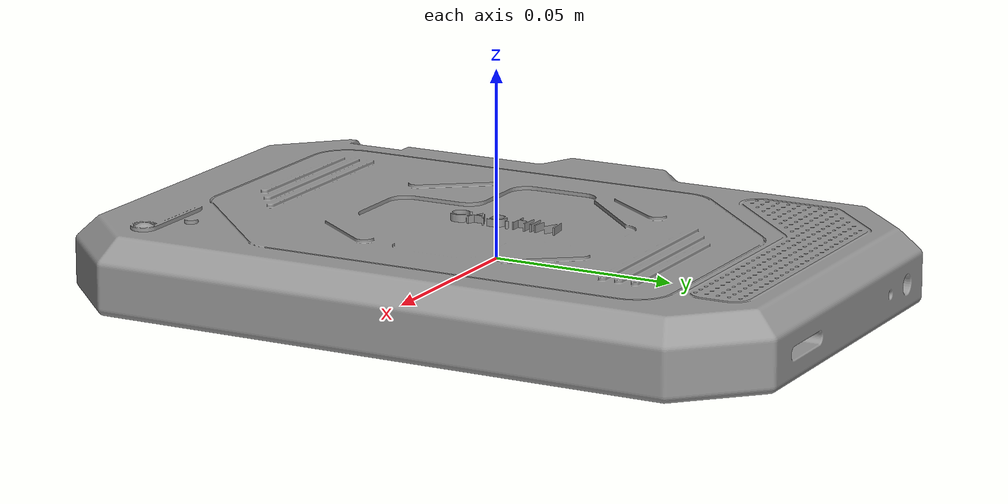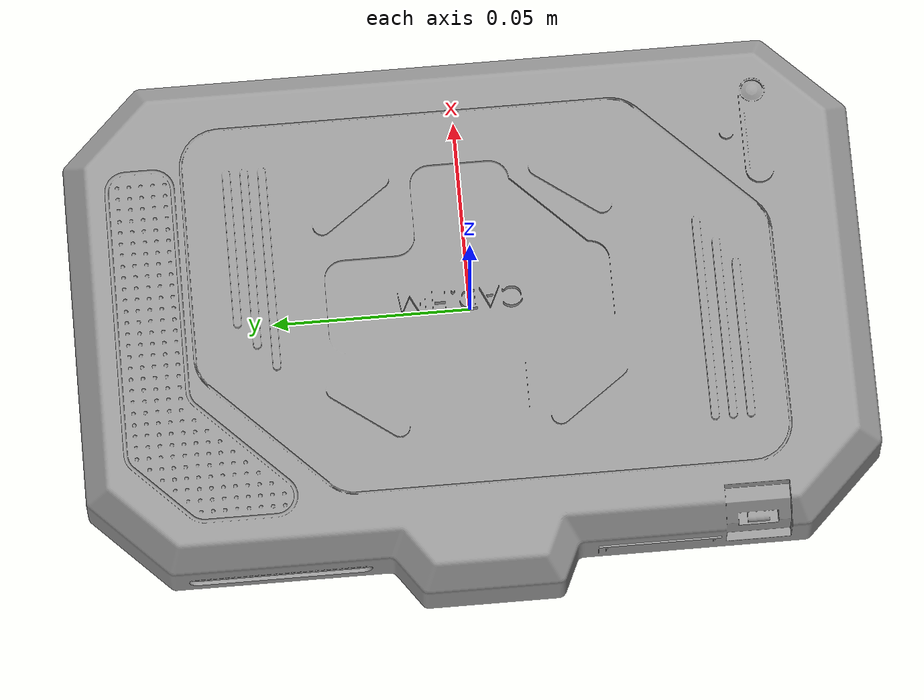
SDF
<?xml version="1.0" ?>

<sdf version="1.5">
  <model name="mobile_cover">
    <static>false</static>
  	<inertial>
        <mass>1.0</mass>
        <inertia>
          <ixx>0.0001</ixx>
          <iyy>0.0001</iyy>
          <izz>0.0001</izz>
          <ixy>0</ixy>
          <ixz>0</ixz>
          <iyz>0</iyz>
        </inertia>
  	</inertial>
    <link name="link0">
      <collision name="collision">
        <geometry>
          <mesh>
            <uri>model://mobile_cover/meshes/mobile.dae</uri>
          </mesh>
        </geometry>
      </collision>
      <visual name="visual">
        <geometry>
          <mesh>
            <uri>model://mobile_cover/meshes/mobile.dae</uri>
          </mesh>
        </geometry>
        <material>
		    <script>
		        <uri>file://media/materials/scripts/gazebo.material</uri>
		        <name>Gazebo/Grey</name>
		    </script>
        </material>
      </visual>
	</link>
  </model>
</sdf>
